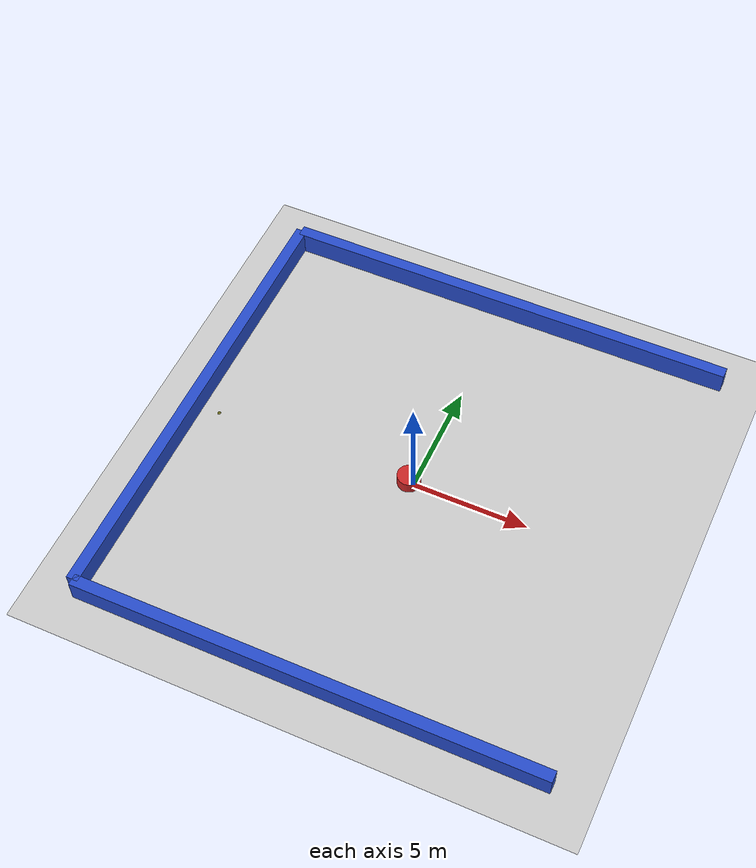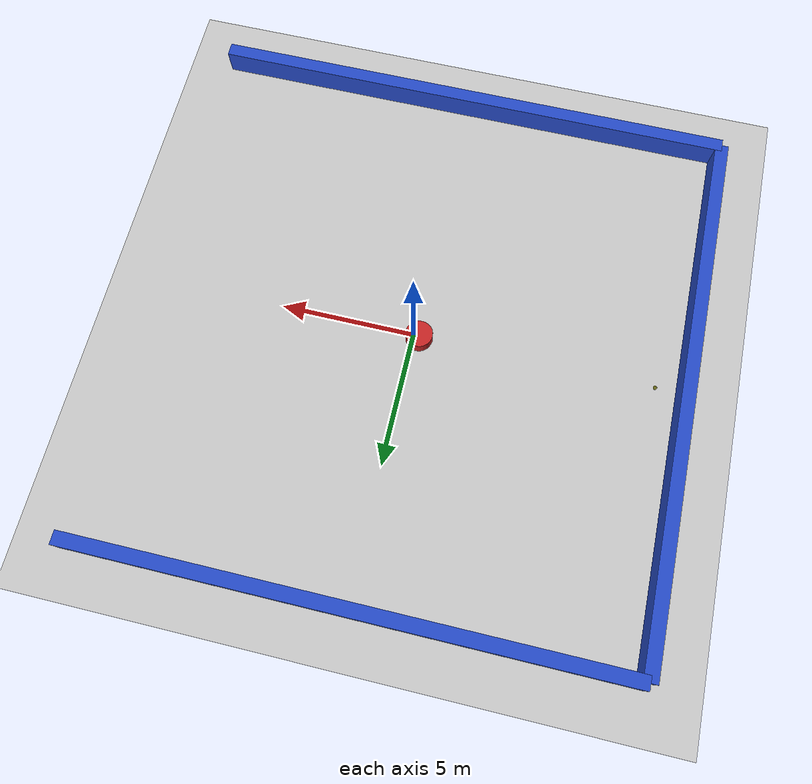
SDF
<sdf version="1.6">
   <world name="default">
      <include>
         <uri>model://ground_plane</uri>
      </include>
      <include>
         <uri>model://sun</uri>
      </include>

    <model name="hardlibobs_177">
      <static>1</static>
      <pose frame="">-0.225000 0.075000 0.000000 0.000000 0.000000 0.000000</pose>
      <link name="link">
        <inertial>
          <mass>1</mass>
          <inertia>
            <ixx>0.145833</ixx>
            <ixy>0</ixy>
            <ixz>0</ixz>
            <iyy>0.145833</iyy>
            <iyz>0</iyz>
            <izz>0.125</izz>
          </inertia>
        </inertial>
        <collision name="collision">
           <geometry>
            <cylinder>
                <radius>0.5000</radius>
                 <length> 1 </length>
            </cylinder>
          </geometry>
           <surface>
            <contact>
              <ode />
            </contact>
            <bounce />
            <friction>
              <torsional>
                <ode />
              </torsional>
              <ode />
            </friction>
          </surface>
        </collision>
        <visual name="visual">
           <geometry>
            <cylinder>
                <radius>0.5000</radius>
                 <length> 1 </length>
            </cylinder>
          </geometry>
          <material>
            <script>
              <name>Gazebo/Red</name>
              <uri>file://media/materials/scripts/gazebo.material</uri>
            </script>
          </material>
        </visual>
        <self_collide>0</self_collide>
        <kinematic>0</kinematic>
        <gravity>1</gravity>
      </link>
      <plugin name="hardlibobs_177" filename="hardlibobs_177.so" />
    </model>

    <model name="mediumlibobs_179">
      <static>1</static>
      <pose frame="">-0.225000 0.075000 0.000000 0.000000 0.000000 0.000000</pose>
      <link name="link">
        <inertial>
          <mass>1</mass>
          <inertia>
            <ixx>0.145833</ixx>
            <ixy>0</ixy>
            <ixz>0</ixz>
            <iyy>0.145833</iyy>
            <iyz>0</iyz>
            <izz>0.125</izz>
          </inertia>
        </inertial>
        <collision name="collision">
           <geometry>
            <cylinder>
                <radius>0.5000</radius>
                 <length> 1 </length>
            </cylinder>
          </geometry>
           <surface>
            <contact>
              <ode />
            </contact>
            <bounce />
            <friction>
              <torsional>
                <ode />
              </torsional>
              <ode />
            </friction>
          </surface>
        </collision>
        <visual name="visual">
           <geometry>
            <cylinder>
                <radius>0.5000</radius>
                 <length> 1 </length>
            </cylinder>
          </geometry>
          <material>
            <script>
              <name>Gazebo/Red</name>
              <uri>file://media/materials/scripts/gazebo.material</uri>
            </script>
          </material>
        </visual>
        <self_collide>0</self_collide>
        <kinematic>0</kinematic>
        <gravity>1</gravity>
      </link>
      <plugin name="mediumlibobs_179" filename="mediumlibobs_179.so" />
    </model>

    <model name="mediumlibobs_25">
      <static>1</static>
      <pose frame="">-0.225000 0.075000 0.000000 0.000000 0.000000 0.000000</pose>
      <link name="link">
        <inertial>
          <mass>1</mass>
          <inertia>
            <ixx>0.145833</ixx>
            <ixy>0</ixy>
            <ixz>0</ixz>
            <iyy>0.145833</iyy>
            <iyz>0</iyz>
            <izz>0.125</izz>
          </inertia>
        </inertial>
        <collision name="collision">
           <geometry>
            <cylinder>
                <radius>0.5000</radius>
                 <length> 1 </length>
            </cylinder>
          </geometry>
           <surface>
            <contact>
              <ode />
            </contact>
            <bounce />
            <friction>
              <torsional>
                <ode />
              </torsional>
              <ode />
            </friction>
          </surface>
        </collision>
        <visual name="visual">
           <geometry>
            <cylinder>
                <radius>0.5000</radius>
                 <length> 1 </length>
            </cylinder>
          </geometry>
          <material>
            <script>
              <name>Gazebo/Red</name>
              <uri>file://media/materials/scripts/gazebo.material</uri>
            </script>
          </material>
        </visual>
        <self_collide>0</self_collide>
        <kinematic>0</kinematic>
        <gravity>1</gravity>
      </link>
      <plugin name="mediumlibobs_25" filename="mediumlibobs_25.so" />
    </model>

    <model name="mediumlibobs_26">
      <static>1</static>
      <pose frame="">-0.225000 0.075000 0.000000 0.000000 0.000000 0.000000</pose>
      <link name="link">
        <inertial>
          <mass>1</mass>
          <inertia>
            <ixx>0.145833</ixx>
            <ixy>0</ixy>
            <ixz>0</ixz>
            <iyy>0.145833</iyy>
            <iyz>0</iyz>
            <izz>0.125</izz>
          </inertia>
        </inertial>
        <collision name="collision">
           <geometry>
            <cylinder>
                <radius>0.5000</radius>
                 <length> 1 </length>
            </cylinder>
          </geometry>
           <surface>
            <contact>
              <ode />
            </contact>
            <bounce />
            <friction>
              <torsional>
                <ode />
              </torsional>
              <ode />
            </friction>
          </surface>
        </collision>
        <visual name="visual">
           <geometry>
            <cylinder>
                <radius>0.5000</radius>
                 <length> 1 </length>
            </cylinder>
          </geometry>
          <material>
            <script>
              <name>Gazebo/Red</name>
              <uri>file://media/materials/scripts/gazebo.material</uri>
            </script>
          </material>
        </visual>
        <self_collide>0</self_collide>
        <kinematic>0</kinematic>
        <gravity>1</gravity>
      </link>
      <plugin name="mediumlibobs_26" filename="mediumlibobs_26.so" />
    </model>

    <model name="mediumlibobs_52">
      <static>1</static>
      <pose frame="">-0.225000 0.075000 0.000000 0.000000 0.000000 0.000000</pose>
      <link name="link">
        <inertial>
          <mass>1</mass>
          <inertia>
            <ixx>0.145833</ixx>
            <ixy>0</ixy>
            <ixz>0</ixz>
            <iyy>0.145833</iyy>
            <iyz>0</iyz>
            <izz>0.125</izz>
          </inertia>
        </inertial>
        <collision name="collision">
           <geometry>
            <cylinder>
                <radius>0.5000</radius>
                 <length> 1 </length>
            </cylinder>
          </geometry>
           <surface>
            <contact>
              <ode />
            </contact>
            <bounce />
            <friction>
              <torsional>
                <ode />
              </torsional>
              <ode />
            </friction>
          </surface>
        </collision>
        <visual name="visual">
           <geometry>
            <cylinder>
                <radius>0.5000</radius>
                 <length> 1 </length>
            </cylinder>
          </geometry>
          <material>
            <script>
              <name>Gazebo/Red</name>
              <uri>file://media/materials/scripts/gazebo.material</uri>
            </script>
          </material>
        </visual>
        <self_collide>0</self_collide>
        <kinematic>0</kinematic>
        <gravity>1</gravity>
      </link>
      <plugin name="mediumlibobs_52" filename="mediumlibobs_52.so" />
    </model>

    <model name="mediumlibobs_51">
      <static>1</static>
      <pose frame="">-0.225000 0.075000 0.000000 0.000000 0.000000 0.000000</pose>
      <link name="link">
        <inertial>
          <mass>1</mass>
          <inertia>
            <ixx>0.145833</ixx>
            <ixy>0</ixy>
            <ixz>0</ixz>
            <iyy>0.145833</iyy>
            <iyz>0</iyz>
            <izz>0.125</izz>
          </inertia>
        </inertial>
        <collision name="collision">
           <geometry>
            <cylinder>
                <radius>0.5000</radius>
                 <length> 1 </length>
            </cylinder>
          </geometry>
           <surface>
            <contact>
              <ode />
            </contact>
            <bounce />
            <friction>
              <torsional>
                <ode />
              </torsional>
              <ode />
            </friction>
          </surface>
        </collision>
        <visual name="visual">
           <geometry>
            <cylinder>
                <radius>0.5000</radius>
                 <length> 1 </length>
            </cylinder>
          </geometry>
          <material>
            <script>
              <name>Gazebo/Red</name>
              <uri>file://media/materials/scripts/gazebo.material</uri>
            </script>
          </material>
        </visual>
        <self_collide>0</self_collide>
        <kinematic>0</kinematic>
        <gravity>1</gravity>
      </link>
      <plugin name="mediumlibobs_51" filename="mediumlibobs_51.so" />
    </model>

    <model name="hardlibobs_70">
      <static>1</static>
      <pose frame="">-0.225000 0.075000 0.000000 0.000000 0.000000 0.000000</pose>
      <link name="link">
        <inertial>
          <mass>1</mass>
          <inertia>
            <ixx>0.145833</ixx>
            <ixy>0</ixy>
            <ixz>0</ixz>
            <iyy>0.145833</iyy>
            <iyz>0</iyz>
            <izz>0.125</izz>
          </inertia>
        </inertial>
        <collision name="collision">
           <geometry>
            <cylinder>
                <radius>0.5000</radius>
                 <length> 1 </length>
            </cylinder>
          </geometry>
           <surface>
            <contact>
              <ode />
            </contact>
            <bounce />
            <friction>
              <torsional>
                <ode />
              </torsional>
              <ode />
            </friction>
          </surface>
        </collision>
        <visual name="visual">
           <geometry>
            <cylinder>
                <radius>0.5000</radius>
                 <length> 1 </length>
            </cylinder>
          </geometry>
          <material>
            <script>
              <name>Gazebo/Red</name>
              <uri>file://media/materials/scripts/gazebo.material</uri>
            </script>
          </material>
        </visual>
        <self_collide>0</self_collide>
        <kinematic>0</kinematic>
        <gravity>1</gravity>
      </link>
      <plugin name="hardlibobs_70" filename="hardlibobs_70.so" />
    </model>

    <model name="mediumlibobs_103">
      <static>1</static>
      <pose frame="">-0.225000 0.075000 0.000000 0.000000 0.000000 0.000000</pose>
      <link name="link">
        <inertial>
          <mass>1</mass>
          <inertia>
            <ixx>0.145833</ixx>
            <ixy>0</ixy>
            <ixz>0</ixz>
            <iyy>0.145833</iyy>
            <iyz>0</iyz>
            <izz>0.125</izz>
          </inertia>
        </inertial>
        <collision name="collision">
           <geometry>
            <cylinder>
                <radius>0.5000</radius>
                 <length> 1 </length>
            </cylinder>
          </geometry>
           <surface>
            <contact>
              <ode />
            </contact>
            <bounce />
            <friction>
              <torsional>
                <ode />
              </torsional>
              <ode />
            </friction>
          </surface>
        </collision>
        <visual name="visual">
           <geometry>
            <cylinder>
                <radius>0.5000</radius>
                 <length> 1 </length>
            </cylinder>
          </geometry>
          <material>
            <script>
              <name>Gazebo/Red</name>
              <uri>file://media/materials/scripts/gazebo.material</uri>
            </script>
          </material>
        </visual>
        <self_collide>0</self_collide>
        <kinematic>0</kinematic>
        <gravity>1</gravity>
      </link>
      <plugin name="mediumlibobs_103" filename="mediumlibobs_103.so" />
    </model>

    <model name="hardlibobs_167">
      <static>1</static>
      <pose frame="">-0.225000 0.075000 0.000000 0.000000 0.000000 0.000000</pose>
      <link name="link">
        <inertial>
          <mass>1</mass>
          <inertia>
            <ixx>0.145833</ixx>
            <ixy>0</ixy>
            <ixz>0</ixz>
            <iyy>0.145833</iyy>
            <iyz>0</iyz>
            <izz>0.125</izz>
          </inertia>
        </inertial>
        <collision name="collision">
           <geometry>
            <cylinder>
                <radius>0.5000</radius>
                 <length> 1 </length>
            </cylinder>
          </geometry>
           <surface>
            <contact>
              <ode />
            </contact>
            <bounce />
            <friction>
              <torsional>
                <ode />
              </torsional>
              <ode />
            </friction>
          </surface>
        </collision>
        <visual name="visual">
           <geometry>
            <cylinder>
                <radius>0.5000</radius>
                 <length> 1 </length>
            </cylinder>
          </geometry>
          <material>
            <script>
              <name>Gazebo/Red</name>
              <uri>file://media/materials/scripts/gazebo.material</uri>
            </script>
          </material>
        </visual>
        <self_collide>0</self_collide>
        <kinematic>0</kinematic>
        <gravity>1</gravity>
      </link>
      <plugin name="hardlibobs_167" filename="hardlibobs_167.so" />
    </model>

    <model name="mediumlibobs_33">
      <static>1</static>
      <pose frame="">-0.225000 0.075000 0.000000 0.000000 0.000000 0.000000</pose>
      <link name="link">
        <inertial>
          <mass>1</mass>
          <inertia>
            <ixx>0.145833</ixx>
            <ixy>0</ixy>
            <ixz>0</ixz>
            <iyy>0.145833</iyy>
            <iyz>0</iyz>
            <izz>0.125</izz>
          </inertia>
        </inertial>
        <collision name="collision">
           <geometry>
            <cylinder>
                <radius>0.5000</radius>
                 <length> 1 </length>
            </cylinder>
          </geometry>
           <surface>
            <contact>
              <ode />
            </contact>
            <bounce />
            <friction>
              <torsional>
                <ode />
              </torsional>
              <ode />
            </friction>
          </surface>
        </collision>
        <visual name="visual">
           <geometry>
            <cylinder>
                <radius>0.5000</radius>
                 <length> 1 </length>
            </cylinder>
          </geometry>
          <material>
            <script>
              <name>Gazebo/Red</name>
              <uri>file://media/materials/scripts/gazebo.material</uri>
            </script>
          </material>
        </visual>
        <self_collide>0</self_collide>
        <kinematic>0</kinematic>
        <gravity>1</gravity>
      </link>
      <plugin name="mediumlibobs_33" filename="mediumlibobs_33.so" />
    </model>

    <model name="mediumlibobs_66">
      <static>1</static>
      <pose frame="">-0.225000 0.075000 0.000000 0.000000 0.000000 0.000000</pose>
      <link name="link">
        <inertial>
          <mass>1</mass>
          <inertia>
            <ixx>0.145833</ixx>
            <ixy>0</ixy>
            <ixz>0</ixz>
            <iyy>0.145833</iyy>
            <iyz>0</iyz>
            <izz>0.125</izz>
          </inertia>
        </inertial>
        <collision name="collision">
           <geometry>
            <cylinder>
                <radius>0.5000</radius>
                 <length> 1 </length>
            </cylinder>
          </geometry>
           <surface>
            <contact>
              <ode />
            </contact>
            <bounce />
            <friction>
              <torsional>
                <ode />
              </torsional>
              <ode />
            </friction>
          </surface>
        </collision>
        <visual name="visual">
           <geometry>
            <cylinder>
                <radius>0.5000</radius>
                 <length> 1 </length>
            </cylinder>
          </geometry>
          <material>
            <script>
              <name>Gazebo/Red</name>
              <uri>file://media/materials/scripts/gazebo.material</uri>
            </script>
          </material>
        </visual>
        <self_collide>0</self_collide>
        <kinematic>0</kinematic>
        <gravity>1</gravity>
      </link>
      <plugin name="mediumlibobs_66" filename="mediumlibobs_66.so" />
    </model>

    <model name="mediumlibobs_14">
      <static>1</static>
      <pose frame="">-0.225000 0.075000 0.000000 0.000000 0.000000 0.000000</pose>
      <link name="link">
        <inertial>
          <mass>1</mass>
          <inertia>
            <ixx>0.145833</ixx>
            <ixy>0</ixy>
            <ixz>0</ixz>
            <iyy>0.145833</iyy>
            <iyz>0</iyz>
            <izz>0.125</izz>
          </inertia>
        </inertial>
        <collision name="collision">
           <geometry>
            <cylinder>
                <radius>0.5000</radius>
                 <length> 1 </length>
            </cylinder>
          </geometry>
           <surface>
            <contact>
              <ode />
            </contact>
            <bounce />
            <friction>
              <torsional>
                <ode />
              </torsional>
              <ode />
            </friction>
          </surface>
        </collision>
        <visual name="visual">
           <geometry>
            <cylinder>
                <radius>0.5000</radius>
                 <length> 1 </length>
            </cylinder>
          </geometry>
          <material>
            <script>
              <name>Gazebo/Red</name>
              <uri>file://media/materials/scripts/gazebo.material</uri>
            </script>
          </material>
        </visual>
        <self_collide>0</self_collide>
        <kinematic>0</kinematic>
        <gravity>1</gravity>
      </link>
      <plugin name="mediumlibobs_14" filename="mediumlibobs_14.so" />
    </model>

    <model name="hardlibobs_83">
      <static>1</static>
      <pose frame="">-0.225000 0.075000 0.000000 0.000000 0.000000 0.000000</pose>
      <link name="link">
        <inertial>
          <mass>1</mass>
          <inertia>
            <ixx>0.145833</ixx>
            <ixy>0</ixy>
            <ixz>0</ixz>
            <iyy>0.145833</iyy>
            <iyz>0</iyz>
            <izz>0.125</izz>
          </inertia>
        </inertial>
        <collision name="collision">
           <geometry>
            <cylinder>
                <radius>0.5000</radius>
                 <length> 1 </length>
            </cylinder>
          </geometry>
           <surface>
            <contact>
              <ode />
            </contact>
            <bounce />
            <friction>
              <torsional>
                <ode />
              </torsional>
              <ode />
            </friction>
          </surface>
        </collision>
        <visual name="visual">
           <geometry>
            <cylinder>
                <radius>0.5000</radius>
                 <length> 1 </length>
            </cylinder>
          </geometry>
          <material>
            <script>
              <name>Gazebo/Red</name>
              <uri>file://media/materials/scripts/gazebo.material</uri>
            </script>
          </material>
        </visual>
        <self_collide>0</self_collide>
        <kinematic>0</kinematic>
        <gravity>1</gravity>
      </link>
      <plugin name="hardlibobs_83" filename="hardlibobs_83.so" />
    </model>

    <model name="mediumlibobs_175">
      <static>1</static>
      <pose frame="">-0.225000 0.075000 0.000000 0.000000 0.000000 0.000000</pose>
      <link name="link">
        <inertial>
          <mass>1</mass>
          <inertia>
            <ixx>0.145833</ixx>
            <ixy>0</ixy>
            <ixz>0</ixz>
            <iyy>0.145833</iyy>
            <iyz>0</iyz>
            <izz>0.125</izz>
          </inertia>
        </inertial>
        <collision name="collision">
           <geometry>
            <cylinder>
                <radius>0.5000</radius>
                 <length> 1 </length>
            </cylinder>
          </geometry>
           <surface>
            <contact>
              <ode />
            </contact>
            <bounce />
            <friction>
              <torsional>
                <ode />
              </torsional>
              <ode />
            </friction>
          </surface>
        </collision>
        <visual name="visual">
           <geometry>
            <cylinder>
                <radius>0.5000</radius>
                 <length> 1 </length>
            </cylinder>
          </geometry>
          <material>
            <script>
              <name>Gazebo/Red</name>
              <uri>file://media/materials/scripts/gazebo.material</uri>
            </script>
          </material>
        </visual>
        <self_collide>0</self_collide>
        <kinematic>0</kinematic>
        <gravity>1</gravity>
      </link>
      <plugin name="mediumlibobs_175" filename="mediumlibobs_175.so" />
    </model>

    <model name="hardlibobs_134">
      <static>1</static>
      <pose frame="">-0.225000 0.075000 0.000000 0.000000 0.000000 0.000000</pose>
      <link name="link">
        <inertial>
          <mass>1</mass>
          <inertia>
            <ixx>0.145833</ixx>
            <ixy>0</ixy>
            <ixz>0</ixz>
            <iyy>0.145833</iyy>
            <iyz>0</iyz>
            <izz>0.125</izz>
          </inertia>
        </inertial>
        <collision name="collision">
           <geometry>
            <cylinder>
                <radius>0.5000</radius>
                 <length> 1 </length>
            </cylinder>
          </geometry>
           <surface>
            <contact>
              <ode />
            </contact>
            <bounce />
            <friction>
              <torsional>
                <ode />
              </torsional>
              <ode />
            </friction>
          </surface>
        </collision>
        <visual name="visual">
           <geometry>
            <cylinder>
                <radius>0.5000</radius>
                 <length> 1 </length>
            </cylinder>
          </geometry>
          <material>
            <script>
              <name>Gazebo/Red</name>
              <uri>file://media/materials/scripts/gazebo.material</uri>
            </script>
          </material>
        </visual>
        <self_collide>0</self_collide>
        <kinematic>0</kinematic>
        <gravity>1</gravity>
      </link>
      <plugin name="hardlibobs_134" filename="hardlibobs_134.so" />
    </model>

      <model name="back_wall">
      <static>1</static>\   <pose frame="">-10 0 .5 0 0 0</pose>        <link name="box_link">

	<collision name="collision">
            <geometry>
              <box>
                <size>.5 20 1</size>
              </box>
            </geometry>
           <surface>
            <contact>
              <ode />
            </contact>
            <bounce />
            <friction>
              <torsional>
                <ode />
              </torsional>
              <ode />
            </friction>
          </surface>
        </collision>

          <visual name="visual">
            <geometry>
              <box>
                <size>.5 20 1</size>
              </box>
            </geometry>
          <material>
                 <script>
                     <name>Gazebo/Blue</name>
                         <uri>file://media/materials/scripts/gazebo.material</uri>
                         </script>
                     </material>
          </visual>
        </link>
      </model>
      <model name="top_wall">
      <static>1</static>
       <pose frame="">0 10 .5 0 0 0</pose>        <link name="box_link">

	<collision name="collision">
           <geometry>
              <box>
                <size>20 .5 1</size>
              </box>
            </geometry>
           <surface>
            <contact>
              <ode />
            </contact>
            <bounce />
            <friction>
              <torsional>
                <ode />
              </torsional>
              <ode />
            </friction>
          </surface>
        </collision>
          <visual name="visual">
            <geometry>
              <box>
                <size>20 .5 1</size>
              </box>
            </geometry>
          <material>
                 <script>
                     <name>Gazebo/Blue</name>
                         <uri>file://media/materials/scripts/gazebo.material</uri>
                         </script>
                     </material>
          </visual>
        </link>
      </model>
      <model name="bottom_wall">
      <static>1</static>
       <pose frame="">0 -10 .5 0 0 0</pose>        <link name="box_link">
	<collision name="collision">
            <geometry>
              <box>
                <size>20 .5 1</size>
              </box>
            </geometry>
           <surface>
            <contact>
              <ode />
            </contact>
            <bounce />
            <friction>
              <torsional>
                <ode />
              </torsional>
              <ode />
            </friction>
          </surface>
        </collision>
          <visual name="visual">
            <geometry>
              <box>
                <size>20 .5 1</size>
              </box>
            </geometry>
          <material>
                 <script>
                     <name>Gazebo/Blue</name>
                         <uri>file://media/materials/scripts/gazebo.material</uri>
                         </script>
                     </material>
          </visual>
        </link>
      </model>
   <model name="goal"><static>1</static><pose frame="">-9.00000 0.000000 0.000000 0.000000 0.000000 0.000000</pose><link name="link"><inertial><mass>1</mass><inertia><ixx>0.145833</ixx><ixy>0</ixy><ixz>0</ixz><iyy>0.145833</iyy><iyz>0</iyz><izz>0.125</izz></inertia></inertial><collision name="collision"><geometry><cylinder><radius>0.075000</radius><length>1</length></cylinder></geometry><max_contacts>10</max_contacts><surface><contact><ode /></contact><bounce /><friction><torsional><ode /></torsional><ode /></friction></surface></collision><visual name="visual"><geometry><cylinder><radius>0.075000</radius><length>0.001</length></cylinder></geometry><material><ambient>0 1 0 1</ambient><diffuse>0.4 0.4 0.1 1</diffuse></material><material><script><name>Gazebo/Grey</name><uri>file://media/materials/scripts/gazebo.material</uri></script></material></visual><self_collide>0</self_collide><kinematic>0</kinematic><gravity>0</gravity></link></model></world>
</sdf>
